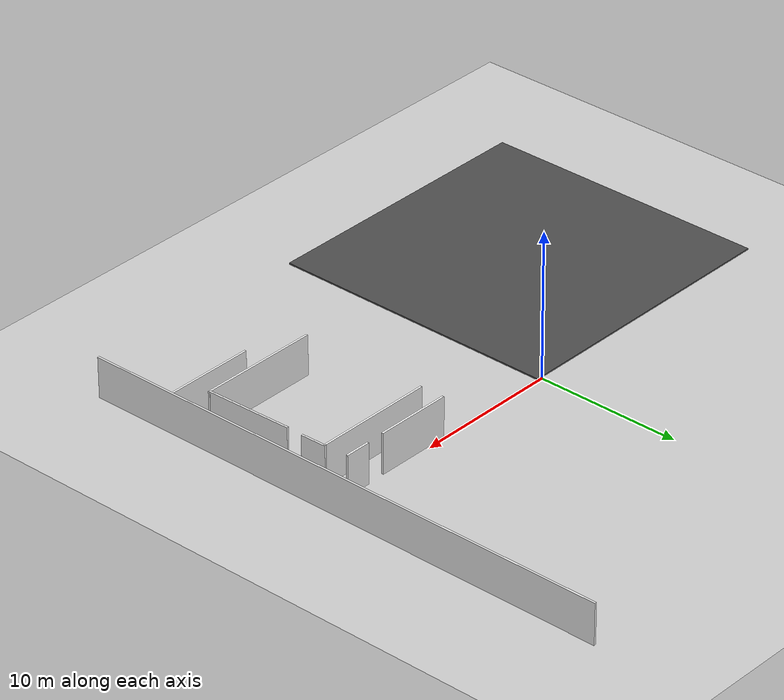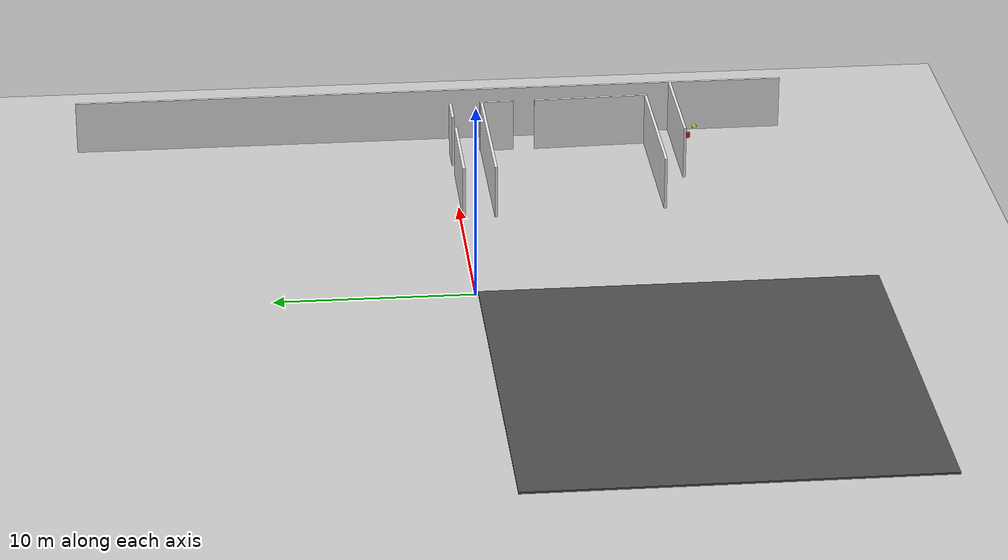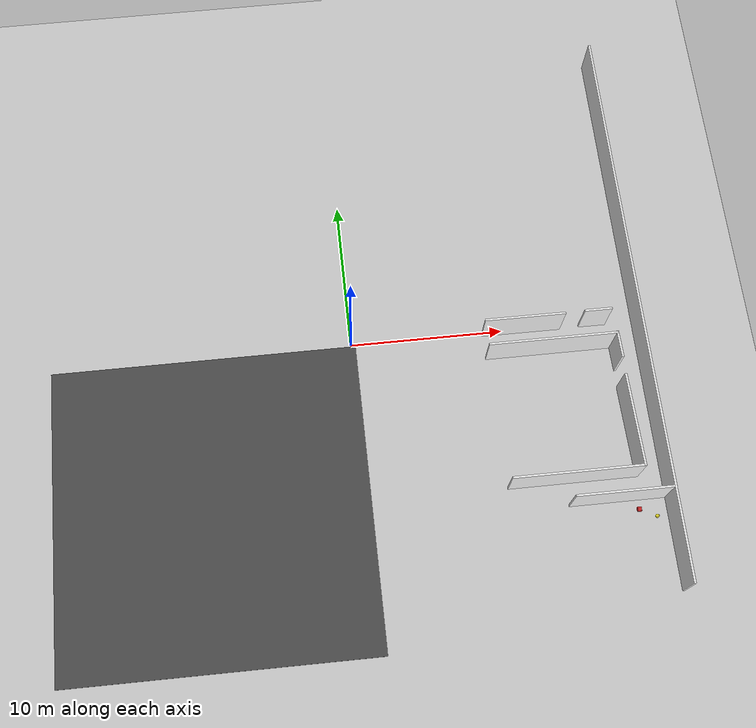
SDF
<sdf version="1.7">
 <world name="default">
  <model name="ground_plane">
   <static>1</static>
   <link name="link">
    <collision name="collision">
     <geometry><plane><normal>0 0 1</normal><size>100 100</size></plane></geometry>
     <surface><friction><ode><mu>100</mu><mu2>50</mu2></ode></friction></surface>
    </collision>
    <visual name="visual">
     <cast_shadows>0</cast_shadows>
     <geometry><plane><normal>0 0 1</normal><size>100 100</size></plane></geometry>
     <material>
      <script><uri>file://media/materials/scripts/gazebo.material</uri><name>Gazebo/Grey</name></script>
     </material>
    </visual>
    <velocity_decay><linear>0</linear><angular>0</angular></velocity_decay>
   </link>
  </model>
  <model name="asphalt_plane">
   <static>1</static>
   <link name="link">
    <collision name="collision"><geometry><box><size>20 20 0.1</size></box></geometry></collision>
    <visual name="visual">
     <cast_shadows>0</cast_shadows>
     <geometry><box><size>20 20 0.1</size></box></geometry>
     <material>
      <script>
       <uri>model://asphalt_plane/materials/scripts</uri>
       <uri>model://asphalt_plane/materials/textures</uri>
       <name>vrc/asphalt</name>
      </script>
     </material>
    </visual>
   </link>
   <pose>-9.73878 -10.1135 0 0 -0 0</pose>
  </model>
  <model name="white_wall_outside_clone_0">
   <link name="link">
    <inertial>
     <mass>1</mass>
     <inertia>
      <ixx>0.166667</ixx>
      <ixy>0</ixy>
      <ixz>0</ixz>
      <iyy>0.166667</iyy>
      <iyz>0</iyz>
      <izz>0.166667</izz>
     </inertia>
    </inertial>
    <visual name="visual">
     <geometry><box><size>37.6355 0.139088 2.78993</size></box></geometry>
     <material>
      <script><name>Gazebo/White</name><uri>file://media/materials/scripts/gazebo.material</uri></script>
      <shader type="vertex"><normal_map>__default__</normal_map></shader>
      <ambient>1 1 1 1</ambient>
      <diffuse>1 1 1 1</diffuse>
      <specular>0 0 0 1</specular>
      <emissive>0 0 0 1</emissive>
     </material>
    </visual>
    <collision name="collision">
     <geometry><box><size>37.6355 0.139088 2.78993</size></box></geometry>
     <surface>
      <friction>
       <ode><mu>1</mu><mu2>1</mu2><fdir1>0 0 0</fdir1><slip1>0</slip1><slip2>0</slip2></ode>
       <torsional>
        <coefficient>1</coefficient>
        <patch_radius>0</patch_radius>
        <surface_radius>0</surface_radius>
        <use_patch_radius>1</use_patch_radius>
        <ode><slip>0</slip></ode>
       </torsional>
      </friction>
      <bounce><restitution_coefficient>0</restitution_coefficient><threshold>1e+06</threshold></bounce>
      <contact>
       <collide_without_contact>0</collide_without_contact>
       <collide_without_contact_bitmask>1</collide_without_contact_bitmask>
       <collide_bitmask>1</collide_bitmask>
       <ode>
        <soft_cfm>0</soft_cfm>
        <soft_erp>0.2</soft_erp>
        <kp>1e+13</kp>
        <kd>1</kd>
        <max_vel>0.01</max_vel>
        <min_depth>0</min_depth>
       </ode>
       <bullet>
        <split_impulse>1</split_impulse>
        <split_impulse_penetration_threshold>-0.01</split_impulse_penetration_threshold>
        <soft_cfm>0</soft_cfm>
        <soft_erp>0.2</soft_erp>
        <kp>1e+13</kp>
        <kd>1</kd>
       </bullet>
      </contact>
     </surface>
    </collision>
   </link>
   <static>1</static>
   <pose>18.7064 0.787366 1.43994 4e-06 1e-06 1.57249</pose>
  </model>
  <model name="white_wall4">
   <link name="link">
    <inertial>
     <mass>1</mass>
     <inertia>
      <ixx>0.166667</ixx>
      <ixy>0</ixy>
      <ixz>0</ixz>
      <iyy>0.166667</iyy>
      <iyz>0</iyz>
      <izz>0.166667</izz>
     </inertia>
    </inertial>
    <visual name="visual">
     <geometry><box><size>6.20543 0.139088 2.78993</size></box></geometry>
     <material>
      <script><name>Gazebo/White</name><uri>file://media/materials/scripts/gazebo.material</uri></script>
      <shader type="vertex"><normal_map>__default__</normal_map></shader>
      <ambient>1 1 1 1</ambient>
      <diffuse>1 1 1 1</diffuse>
      <specular>0 0 0 1</specular>
      <emissive>0 0 0 1</emissive>
     </material>
    </visual>
    <collision name="collision">
     <geometry><box><size>6.20543 0.139088 2.78993</size></box></geometry>
     <surface>
      <friction>
       <ode><mu>1</mu><mu2>1</mu2><fdir1>0 0 0</fdir1><slip1>0</slip1><slip2>0</slip2></ode>
       <torsional>
        <coefficient>1</coefficient>
        <patch_radius>0</patch_radius>
        <surface_radius>0</surface_radius>
        <use_patch_radius>1</use_patch_radius>
        <ode><slip>0</slip></ode>
       </torsional>
      </friction>
      <bounce><restitution_coefficient>0</restitution_coefficient><threshold>1e+06</threshold></bounce>
      <contact>
       <collide_without_contact>0</collide_without_contact>
       <collide_without_contact_bitmask>1</collide_without_contact_bitmask>
       <collide_bitmask>1</collide_bitmask>
       <ode>
        <soft_cfm>0</soft_cfm>
        <soft_erp>0.2</soft_erp>
        <kp>1e+13</kp>
        <kd>1</kd>
        <max_vel>0.01</max_vel>
        <min_depth>0</min_depth>
       </ode>
       <bullet>
        <split_impulse>1</split_impulse>
        <split_impulse_penetration_threshold>-0.01</split_impulse_penetration_threshold>
        <soft_cfm>0</soft_cfm>
        <soft_erp>0.2</soft_erp>
        <kp>1e+13</kp>
        <kd>1</kd>
       </bullet>
      </contact>
     </surface>
    </collision>
   </link>
   <static>1</static>
   <pose>15.6823 -12.076 1.43996 -1e-06 4e-06 -1.6e-05</pose>
  </model>
  <model name="white_wall8">
   <link name="link">
    <inertial>
     <mass>1</mass>
     <inertia>
      <ixx>0.166667</ixx>
      <ixy>0</ixy>
      <ixz>0</ixz>
      <iyy>0.166667</iyy>
      <iyz>0</iyz>
      <izz>0.166667</izz>
     </inertia>
    </inertial>
    <visual name="visual">
     <geometry><box><size>8.30741 0.139088 2.78993</size></box></geometry>
     <material>
      <script><name>Gazebo/White</name><uri>file://media/materials/scripts/gazebo.material</uri></script>
      <shader type="vertex"><normal_map>__default__</normal_map></shader>
      <ambient>1 1 1 1</ambient>
      <diffuse>1 1 1 1</diffuse>
      <specular>0 0 0 1</specular>
      <emissive>0 0 0 1</emissive>
     </material>
    </visual>
    <collision name="collision">
     <geometry><box><size>8.30741 0.139088 2.78993</size></box></geometry>
     <surface>
      <friction>
       <ode><mu>1</mu><mu2>1</mu2><fdir1>0 0 0</fdir1><slip1>0</slip1><slip2>0</slip2></ode>
       <torsional>
        <coefficient>1</coefficient>
        <patch_radius>0</patch_radius>
        <surface_radius>0</surface_radius>
        <use_patch_radius>1</use_patch_radius>
        <ode><slip>0</slip></ode>
       </torsional>
      </friction>
      <bounce><restitution_coefficient>0</restitution_coefficient><threshold>1e+06</threshold></bounce>
      <contact>
       <collide_without_contact>0</collide_without_contact>
       <collide_without_contact_bitmask>1</collide_without_contact_bitmask>
       <collide_bitmask>1</collide_bitmask>
       <ode>
        <soft_cfm>0</soft_cfm>
        <soft_erp>0.2</soft_erp>
        <kp>1e+13</kp>
        <kd>1</kd>
        <max_vel>0.01</max_vel>
        <min_depth>0</min_depth>
       </ode>
       <bullet>
        <split_impulse>1</split_impulse>
        <split_impulse_penetration_threshold>-0.01</split_impulse_penetration_threshold>
        <soft_cfm>0</soft_cfm>
        <soft_erp>0.2</soft_erp>
        <kp>1e+13</kp>
        <kd>1</kd>
       </bullet>
      </contact>
     </surface>
    </collision>
   </link>
   <static>1</static>
   <pose>13.0532 -10.5824 1.43997 -1e-06 4e-06 -1.6e-05</pose>
  </model>
  <model name="white_wall8_clone">
   <link name="link">
    <inertial>
     <mass>1</mass>
     <inertia>
      <ixx>0.166667</ixx>
      <ixy>0</ixy>
      <ixz>0</ixz>
      <iyy>0.166667</iyy>
      <iyz>0</iyz>
      <izz>0.166667</izz>
     </inertia>
    </inertial>
    <visual name="visual">
     <geometry><box><size>8.30741 0.139088 2.78993</size></box></geometry>
     <material>
      <script><name>Gazebo/White</name><uri>file://media/materials/scripts/gazebo.material</uri></script>
      <shader type="vertex"><normal_map>__default__</normal_map></shader>
      <ambient>1 1 1 1</ambient>
      <diffuse>1 1 1 1</diffuse>
      <specular>0 0 0 1</specular>
      <emissive>0 0 0 1</emissive>
     </material>
    </visual>
    <collision name="collision">
     <geometry><box><size>8.30741 0.139088 2.78993</size></box></geometry>
     <surface>
      <friction>
       <ode><mu>1</mu><mu2>1</mu2><fdir1>0 0 0</fdir1><slip1>0</slip1><slip2>0</slip2></ode>
       <torsional>
        <coefficient>1</coefficient>
        <patch_radius>0</patch_radius>
        <surface_radius>0</surface_radius>
        <use_patch_radius>1</use_patch_radius>
        <ode><slip>0</slip></ode>
       </torsional>
      </friction>
      <bounce><restitution_coefficient>0</restitution_coefficient><threshold>1e+06</threshold></bounce>
      <contact>
       <collide_without_contact>0</collide_without_contact>
       <collide_without_contact_bitmask>1</collide_without_contact_bitmask>
       <collide_bitmask>1</collide_bitmask>
       <ode>
        <soft_cfm>0</soft_cfm>
        <soft_erp>0.2</soft_erp>
        <kp>1e+13</kp>
        <kd>1</kd>
        <max_vel>0.01</max_vel>
        <min_depth>0</min_depth>
       </ode>
       <bullet>
        <split_impulse>1</split_impulse>
        <split_impulse_penetration_threshold>-0.01</split_impulse_penetration_threshold>
        <soft_cfm>0</soft_cfm>
        <soft_erp>0.2</soft_erp>
        <kp>1e+13</kp>
        <kd>1</kd>
       </bullet>
      </contact>
     </surface>
    </collision>
   </link>
   <static>1</static>
   <pose>12.8316 -1.81147 1.43997 -1e-06 4e-06 -1.6e-05</pose>
  </model>
  <model name="white_wall10_clone_clone">
   <link name="link">
    <inertial>
     <mass>1</mass>
     <inertia>
      <ixx>0.166667</ixx>
      <ixy>0</ixy>
      <ixz>0</ixz>
      <iyy>0.166667</iyy>
      <iyz>0</iyz>
      <izz>0.166667</izz>
     </inertia>
    </inertial>
    <visual name="visual">
     <geometry><box><size>6.01508 0.139088 2.78993</size></box></geometry>
     <material>
      <script><name>Gazebo/White</name><uri>file://media/materials/scripts/gazebo.material</uri></script>
      <shader type="vertex"><normal_map>__default__</normal_map></shader>
      <ambient>1 1 1 1</ambient>
      <diffuse>1 1 1 1</diffuse>
      <specular>0 0 0 1</specular>
      <emissive>0 0 0 1</emissive>
     </material>
    </visual>
    <collision name="collision">
     <geometry><box><size>6.01508 0.139088 2.78993</size></box></geometry>
     <surface>
      <friction>
       <ode><mu>1</mu><mu2>1</mu2><fdir1>0 0 0</fdir1><slip1>0</slip1><slip2>0</slip2></ode>
       <torsional>
        <coefficient>1</coefficient>
        <patch_radius>0</patch_radius>
        <surface_radius>0</surface_radius>
        <use_patch_radius>1</use_patch_radius>
        <ode><slip>0</slip></ode>
       </torsional>
      </friction>
      <bounce><restitution_coefficient>0</restitution_coefficient><threshold>1e+06</threshold></bounce>
      <contact>
       <collide_without_contact>0</collide_without_contact>
       <collide_without_contact_bitmask>1</collide_without_contact_bitmask>
       <collide_bitmask>1</collide_bitmask>
       <ode>
        <soft_cfm>0</soft_cfm>
        <soft_erp>0.2</soft_erp>
        <kp>1e+13</kp>
        <kd>1</kd>
        <max_vel>0.01</max_vel>
        <min_depth>0</min_depth>
       </ode>
       <bullet>
        <split_impulse>1</split_impulse>
        <split_impulse_penetration_threshold>-0.01</split_impulse_penetration_threshold>
        <soft_cfm>0</soft_cfm>
        <soft_erp>0.2</soft_erp>
        <kp>1e+13</kp>
        <kd>1</kd>
       </bullet>
      </contact>
     </surface>
    </collision>
   </link>
   <static>1</static>
   <pose>17.0462 -7.62002 1.43997 4e-06 1e-06 1.59932</pose>
  </model>
  <model name="white_wall3_clone_clone_1_clone">
   <link name="link">
    <inertial>
     <mass>1</mass>
     <inertia>
      <ixx>0.166667</ixx>
      <ixy>0</ixy>
      <ixz>0</ixz>
      <iyy>0.166667</iyy>
      <iyz>0</iyz>
      <izz>0.166667</izz>
     </inertia>
    </inertial>
    <visual name="visual">
     <geometry><box><size>1.77743 0.139088 2.78993</size></box></geometry>
     <material>
      <script><name>Gazebo/White</name><uri>file://media/materials/scripts/gazebo.material</uri></script>
      <shader type="vertex"><normal_map>__default__</normal_map></shader>
      <ambient>1 1 1 1</ambient>
      <diffuse>1 1 1 1</diffuse>
      <specular>0 0 0 1</specular>
      <emissive>0 0 0 1</emissive>
     </material>
    </visual>
    <collision name="collision">
     <geometry><box><size>1.77743 0.139088 2.78993</size></box></geometry>
     <surface>
      <friction>
       <ode><mu>1</mu><mu2>1</mu2><fdir1>0 0 0</fdir1><slip1>0</slip1><slip2>0</slip2></ode>
       <torsional>
        <coefficient>1</coefficient>
        <patch_radius>0</patch_radius>
        <surface_radius>0</surface_radius>
        <use_patch_radius>1</use_patch_radius>
        <ode><slip>0</slip></ode>
       </torsional>
      </friction>
      <bounce><restitution_coefficient>0</restitution_coefficient><threshold>1e+06</threshold></bounce>
      <contact>
       <collide_without_contact>0</collide_without_contact>
       <collide_without_contact_bitmask>1</collide_without_contact_bitmask>
       <collide_bitmask>1</collide_bitmask>
       <ode>
        <soft_cfm>0</soft_cfm>
        <soft_erp>0.2</soft_erp>
        <kp>1e+13</kp>
        <kd>1</kd>
        <max_vel>0.01</max_vel>
        <min_depth>0</min_depth>
       </ode>
       <bullet>
        <split_impulse>1</split_impulse>
        <split_impulse_penetration_threshold>-0.01</split_impulse_penetration_threshold>
        <soft_cfm>0</soft_cfm>
        <soft_erp>0.2</soft_erp>
        <kp>1e+13</kp>
        <kd>1</kd>
       </bullet>
      </contact>
     </surface>
    </collision>
   </link>
   <static>1</static>
   <pose>16.9602 -2.60992 1.43995 4e-06 1e-06 1.59932</pose>
  </model>
  <model name="white_wall3_clone_clone_1_clone_0">
   <link name="link">
    <inertial>
     <mass>1</mass>
     <inertia>
      <ixx>0.166667</ixx>
      <ixy>0</ixy>
      <ixz>0</ixz>
      <iyy>0.166667</iyy>
      <iyz>0</iyz>
      <izz>0.166667</izz>
     </inertia>
    </inertial>
    <visual name="visual">
     <geometry><box><size>1.77743 0.139088 2.78993</size></box></geometry>
     <material>
      <script><name>Gazebo/White</name><uri>file://media/materials/scripts/gazebo.material</uri></script>
      <shader type="vertex"><normal_map>__default__</normal_map></shader>
      <ambient>1 1 1 1</ambient>
      <diffuse>1 1 1 1</diffuse>
      <specular>0 0 0 1</specular>
      <emissive>0 0 0 1</emissive>
     </material>
    </visual>
    <collision name="collision">
     <geometry><box><size>1.77743 0.139088 2.78993</size></box></geometry>
     <surface>
      <friction>
       <ode><mu>1</mu><mu2>1</mu2><fdir1>0 0 0</fdir1><slip1>0</slip1><slip2>0</slip2></ode>
       <torsional>
        <coefficient>1</coefficient>
        <patch_radius>0</patch_radius>
        <surface_radius>0</surface_radius>
        <use_patch_radius>1</use_patch_radius>
        <ode><slip>0</slip></ode>
       </torsional>
      </friction>
      <bounce><restitution_coefficient>0</restitution_coefficient><threshold>1e+06</threshold></bounce>
      <contact>
       <collide_without_contact>0</collide_without_contact>
       <collide_without_contact_bitmask>1</collide_without_contact_bitmask>
       <collide_bitmask>1</collide_bitmask>
       <ode>
        <soft_cfm>0</soft_cfm>
        <soft_erp>0.2</soft_erp>
        <kp>1e+13</kp>
        <kd>1</kd>
        <max_vel>0.01</max_vel>
        <min_depth>0</min_depth>
       </ode>
       <bullet>
        <split_impulse>1</split_impulse>
        <split_impulse_penetration_threshold>-0.01</split_impulse_penetration_threshold>
        <soft_cfm>0</soft_cfm>
        <soft_erp>0.2</soft_erp>
        <kp>1e+13</kp>
        <kd>1</kd>
       </bullet>
      </contact>
     </surface>
    </collision>
   </link>
   <static>1</static>
   <pose>15.989 -0.14095 1.43995 1e-06 -4e-06 3.13818</pose>
  </model>
  <model name="white_wall13">
   <link name="link">
    <inertial>
     <mass>1</mass>
     <inertia>
      <ixx>0.166667</ixx>
      <ixy>0</ixy>
      <ixz>0</ixz>
      <iyy>0.166667</iyy>
      <iyz>0</iyz>
      <izz>0.166667</izz>
     </inertia>
    </inertial>
    <visual name="visual">
     <geometry><box><size>5.21157 0.139088 2.78993</size></box></geometry>
     <material>
      <script><name>Gazebo/White</name><uri>file://media/materials/scripts/gazebo.material</uri></script>
      <shader type="vertex"><normal_map>__default__</normal_map></shader>
      <ambient>1 1 1 1</ambient>
      <diffuse>1 1 1 1</diffuse>
      <specular>0 0 0 1</specular>
      <emissive>0 0 0 1</emissive>
     </material>
    </visual>
    <collision name="collision">
     <geometry><box><size>5.21157 0.139088 2.78993</size></box></geometry>
     <surface>
      <friction>
       <ode><mu>1</mu><mu2>1</mu2><fdir1>0 0 0</fdir1><slip1>0</slip1><slip2>0</slip2></ode>
       <torsional>
        <coefficient>1</coefficient>
        <patch_radius>0</patch_radius>
        <surface_radius>0</surface_radius>
        <use_patch_radius>1</use_patch_radius>
        <ode><slip>0</slip></ode>
       </torsional>
      </friction>
      <bounce><restitution_coefficient>0</restitution_coefficient><threshold>1e+06</threshold></bounce>
      <contact>
       <collide_without_contact>0</collide_without_contact>
       <collide_without_contact_bitmask>1</collide_without_contact_bitmask>
       <collide_bitmask>1</collide_bitmask>
       <ode>
        <soft_cfm>0</soft_cfm>
        <soft_erp>0.2</soft_erp>
        <kp>1e+13</kp>
        <kd>1</kd>
        <max_vel>0.01</max_vel>
        <min_depth>0</min_depth>
       </ode>
       <bullet>
        <split_impulse>1</split_impulse>
        <split_impulse_penetration_threshold>-0.01</split_impulse_penetration_threshold>
        <soft_cfm>0</soft_cfm>
        <soft_erp>0.2</soft_erp>
        <kp>1e+13</kp>
        <kd>1</kd>
       </bullet>
      </contact>
     </surface>
    </collision>
   </link>
   <static>1</static>
   <pose>11.2444 -0.169888 1.43995 1e-06 -4e-06 3.13818</pose>
  </model>
  <model name="unit_box_red_25_clone">
   <link name="link">
    <inertial>
     <mass>1</mass>
     <inertia>
      <ixx>0.166667</ixx>
      <ixy>0</ixy>
      <ixz>0</ixz>
      <iyy>0.166667</iyy>
      <iyz>0</iyz>
      <izz>0.166667</izz>
     </inertia>
    </inertial>
    <visual name="visual">
     <geometry><box><size>0.25 0.25 0.25</size></box></geometry>
     <material>
      <script><name>Gazebo/Red</name><uri>file://media/materials/scripts/gazebo.material</uri></script>
      <shader type="vertex"><normal_map>__default__</normal_map></shader>
      <ambient>1 0 0 1</ambient>
      <diffuse>1 0 0 1</diffuse>
      <specular>0.1 0.1 0.1 1</specular>
      <emissive>0 0 0 1</emissive>
     </material>
    </visual>
    <collision name="collision">
     <geometry><box><size>1 1 1</size></box></geometry>
     <surface>
      <friction>
       <ode><mu>1</mu><mu2>1</mu2><fdir1>0 0 0</fdir1><slip1>0</slip1><slip2>0</slip2></ode>
       <torsional>
        <coefficient>1</coefficient>
        <patch_radius>0</patch_radius>
        <surface_radius>0</surface_radius>
        <use_patch_radius>1</use_patch_radius>
        <ode><slip>0</slip></ode>
       </torsional>
      </friction>
      <bounce><restitution_coefficient>0</restitution_coefficient><threshold>1e+06</threshold></bounce>
      <contact>
       <collide_without_contact>0</collide_without_contact>
       <collide_without_contact_bitmask>1</collide_without_contact_bitmask>
       <collide_bitmask>1</collide_bitmask>
       <ode>
        <soft_cfm>0</soft_cfm>
        <soft_erp>0.2</soft_erp>
        <kp>1e+13</kp>
        <kd>1</kd>
        <max_vel>0.01</max_vel>
        <min_depth>0</min_depth>
       </ode>
       <bullet>
        <split_impulse>1</split_impulse>
        <split_impulse_penetration_threshold>-0.01</split_impulse_penetration_threshold>
        <soft_cfm>0</soft_cfm>
        <soft_erp>0.2</soft_erp>
        <kp>1e+13</kp>
        <kd>1</kd>
       </bullet>
      </contact>
     </surface>
    </collision>
   </link>
   <static>0</static>
   <pose>16.8257 -12.8406 0.55 0 -0 7.1e-05</pose>
  </model>
  <model name="unit_sphere_yellow_25_clone">
   <link name="link">
    <inertial>
     <mass>1</mass>
     <inertia><ixx>0.1</ixx><ixy>0</ixy><ixz>0</ixz><iyy>0.1</iyy><iyz>0</iyz><izz>0.1</izz></inertia>
    </inertial>
    <visual name="visual">
     <geometry><sphere><radius>0.125</radius></sphere></geometry>
     <material>
      <script><name>Gazebo/Yellow</name><uri>file://media/materials/scripts/gazebo.material</uri></script>
      <shader type="vertex"><normal_map>__default__</normal_map></shader>
      <ambient>1 1 0 1</ambient>
      <diffuse>1 1 0 1</diffuse>
      <emissive>0 0 0 1</emissive>
     </material>
    </visual>
    <collision name="collision">
     <geometry><sphere><radius>0.5</radius></sphere></geometry>
     <surface>
      <friction>
       <ode><mu>1</mu><mu2>1</mu2><fdir1>0 0 0</fdir1><slip1>0</slip1><slip2>0</slip2></ode>
       <torsional>
        <coefficient>1</coefficient>
        <patch_radius>0</patch_radius>
        <surface_radius>0</surface_radius>
        <use_patch_radius>1</use_patch_radius>
        <ode><slip>0</slip></ode>
       </torsional>
      </friction>
      <bounce><restitution_coefficient>0</restitution_coefficient><threshold>1e+06</threshold></bounce>
      <contact>
       <collide_without_contact>0</collide_without_contact>
       <collide_without_contact_bitmask>1</collide_without_contact_bitmask>
       <collide_bitmask>1</collide_bitmask>
       <ode>
        <soft_cfm>0</soft_cfm>
        <soft_erp>0.2</soft_erp>
        <kp>1e+13</kp>
        <kd>1</kd>
        <max_vel>0.01</max_vel>
        <min_depth>0</min_depth>
       </ode>
       <bullet>
        <split_impulse>1</split_impulse>
        <split_impulse_penetration_threshold>-0.01</split_impulse_penetration_threshold>
        <soft_cfm>0</soft_cfm>
        <soft_erp>0.2</soft_erp>
        <kp>1e+13</kp>
        <kd>1</kd>
       </bullet>
      </contact>
     </surface>
    </collision>
   </link>
   <static>0</static>
   <pose>17.8722 -13.3671 0.55 0 -0 0</pose>
  </model>
 </world>
</sdf>
